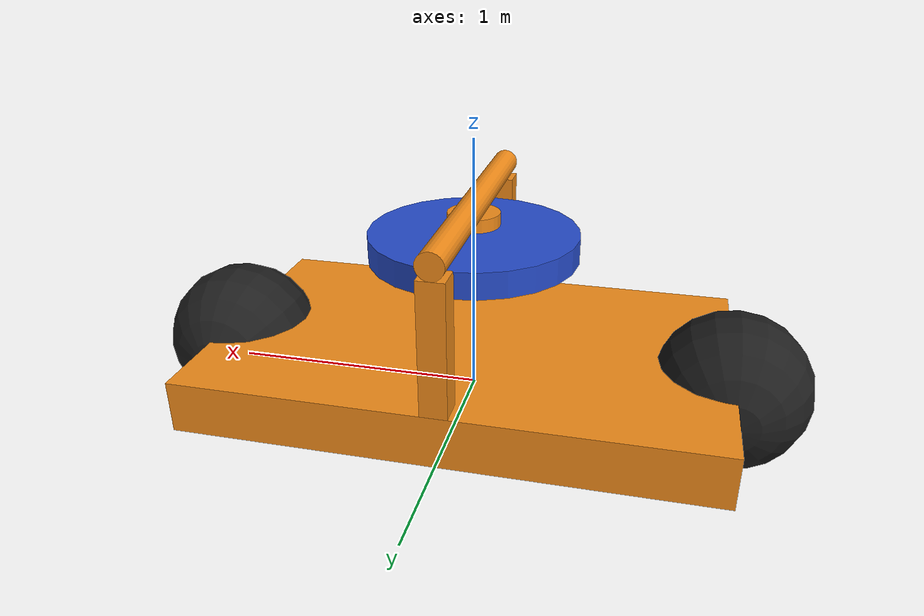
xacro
<?xml version="1.0"?>

<robot name="moto" xmlns:xacro="http://ros.org/wiki/xacro">

    <!--    Properties    -->
    <xacro:property name="namespace" value="moto"/>
    <xacro:property name="PI" value="3.1415926535897931"/>

    <!-- Properties of base -->
    <xacro:property name="height" value=".2"/>
    <xacro:property name="width" value="1.2"/>
    <xacro:property name="length" value="2"/>
    <xacro:property name="mass_base" value="10"/>

    <!-- Properties of wheels    -->
    <xacro:property name="radius" value="0.3"/>
    <xacro:property name="h" value=".05"/>
    <xacro:property name="mass_wheel" value="0.2"/>

    <!-- Properties from gyro support -->
    <xacro:property name="mass_support" value="1"/>
    <xacro:property name="h_support" value="0.5"/>
    <xacro:property name="w_support" value="0.1"/>

    <!-- Propertis of a gyroscope -->
    <xacro:property name="radius_gyro" value=".4"/>
    <xacro:property name="h_gyro" value=".1"/>
    <xacro:property name="mass_gyro" value="3"/>

    <xacro:property name="effort_support" value="200"/>
    <xacro:property name="velocity_support" value="100"/>
    <xacro:property name="effort_gyro" value="200"/>
    <xacro:property name="velocity_gyro" value="200"/>
    <xacro:property name="k_velocity_gyro" value="100"/>
    <xacro:property name="damp_gyro" value="0.1"/>
    <xacro:property name="fric_gyro" value="0.0"/>

    <!-- Include Gazebo association -->
    <xacro:include filename="$(find gyro_description)/urdf/moto.gazebo"/>
    <!-- Including Color material for Gazebo -->
    <xacro:include filename="$(find gyro_description)/urdf/materials.xacro"/>
    <!-- Component Snippets -->
    <xacro:include filename="$(find gyro_description)/urdf/component_snippets.xacro"/>

    <!-- ADIS16448 IMU. -->
    <xacro:imu_plugin_macro
            namespace="${namespace}"
            imu_suffix=""
            parent_link="base_link"
            imu_topic="imu_base"
            mass_imu_sensor="0.015"
            gyroscope_noise_density="0.0003394"
            gyroscope_random_walk="0.000038785"
            gyroscope_bias_correlation_time="1000.0"
            gyroscope_turn_on_bias_sigma="0.0087"
            accelerometer_noise_density="0.004"
            accelerometer_random_walk="0.006"
            accel_bias_correlation_time="300.0"
            accelerometer_turn_on_bias_sigma="0.1960">
        <inertia ixx="0.00001" ixy="0.0" ixz="0.0" iyy="0.00001" iyz="0.0" izz="0.00001"/>
        <origin xyz="${length/4} 0 ${height}" rpy="0 0 0"/>
    </xacro:imu_plugin_macro>

    <link name="base_link">
        <collision>
            <origin xyz="0 0 ${height/2}" rpy="0 0 0"/>
            <geometry>
                <box size="${length} ${width} ${height}"/>
            </geometry>
        </collision>
        <visual>
            <origin xyz="0 0 ${height/2}" rpy="0 0 0"/>
            <geometry>
                <box size="${length} ${width} ${height}"/>
            </geometry>
            <material name="orange"/>
        </visual>
        <inertial>
            <origin xyz="0 0 ${height/2}" rpy="0 0 0"/>
            <mass value="${mass_base}"/>
            <inertia ixx="${mass_base / 12.0 * (height*height + width*width)}" ixy="0.0" ixz="0.0"
                     iyy="${mass_base / 12.0 * (height*height + length*length)}" iyz="0.0"
                     izz="${mass_base / 12.0 * (length*length + width*width)}"/>
        </inertial>
    </link>

    <joint name="imu_joint" type="fixed">
        <origin xyz="${length/4} 0.0 ${height}" rpy="0.0 0.0 0.0"/>
        <parent link="base_link"/>
        <child link="imu_link"/>
        <axis xyz="0.0 0.0 1.0"/>
    </joint>

    <link name="imu_link">
    </link>

    <joint name="front_wheel_joint" type="continuous">
        <origin xyz="${length/2} 0.0 ${height/2}" rpy="0.0 0.0 0.0"/>
        <parent link="base_link"/>
        <child link="front_wheel_link"/>
        <axis xyz="0 1 0"/>
    </joint>

    <joint name="back_wheel_joint" type="continuous">
        <origin xyz="${-length/2} 0.0 ${height/2}" rpy="0.0 0.0 0.0"/>
        <parent link="base_link"/>
        <child link="back_wheel_link"/>
        <axis xyz="0 1 0"/>
    </joint>

    <link name="front_wheel_link">
        <visual>
            <origin xyz="0.0 0.0 0.0" rpy="${PI/2} 0.0 0.0"/>
            <geometry>
                <sphere radius="${radius}"/>
            </geometry>
        </visual>
        <collision>
            <origin xyz="0.0 0.0 0.0" rpy="${PI/2} 0.0 0.0"/>
            <geometry>
                <sphere radius="${radius}"/>
            </geometry>
        </collision>
        <inertial>
            <origin xyz="0.0 0.0 0.0" rpy="${PI/2} 0.0 0.0"/>
            <mass value="${mass_wheel}"/>
            <inertia ixx="${mass_wheel / 12.0 * (3*radius*radius + h*h)}" ixy="0.0" ixz="0.0"
                     iyy="${mass_wheel / 12.0 * (3*radius*radius + h*h)}" iyz="0.0"
                     izz="${mass_wheel / 2.0 * (radius*radius)}"/>
        </inertial>
    </link>

    <link name="back_wheel_link">
        <visual>
            <origin xyz="0.0 0.0 0.0" rpy="${PI/2} 0.0 0.0"/>
            <geometry>
                <sphere radius="${radius}"/>
            </geometry>
        </visual>
        <collision>
            <origin xyz="0.0 0.0 0.0" rpy="${PI/2} 0.0 0.0"/>
            <geometry>
                <sphere radius="${radius}"/>
            </geometry>
        </collision>
        <inertial>
            <origin xyz="0.0 0.0 0.0" rpy="${PI/2} 0.0 0.0"/>
            <mass value="${mass_wheel}"/>
            <inertia ixx="${mass_wheel / 12.0 * (3*radius*radius + h*h)}" ixy="0.0" ixz="0.0"
                     iyy="${mass_wheel / 12.0 * (3*radius*radius + h*h)}" iyz="0.0"
                     izz="${mass_wheel / 2.0 * (radius*radius)}"/>
        </inertial>
    </link>

    <joint name="support_left_joint" type="fixed">
        <origin xyz="0.0 ${(width - w_support)/2} ${height}" rpy="0.0 0.0 0.0"/>
        <parent link="base_link"/>
        <child link="support_left_link"/>
        <axis xyz="0.0 0.0 1.0"/>
    </joint>

    <link name="support_left_link">
        <visual>
            <origin xyz="0.0 0.0 ${h_support/2}" rpy="0 0 0"/>
            <geometry>
                <box size="${w_support} ${w_support} ${h_support}"/>
            </geometry>
        </visual>
        <collision>
            <origin xyz="0.0 0.0 ${h_support/2}" rpy="0 0 0"/>
            <geometry>
                <box size="${w_support} ${w_support} ${h_support}"/>
            </geometry>
        </collision>
        <inertial>
            <origin xyz="0 0 ${h_support/2}" rpy="0 0 0"/>
            <mass value="${mass_support/4}"/>
            <inertia ixx="${(mass_support/4) / 12.0 * (h_support*h_support + w_support*w_support)}" ixy="0.0" ixz="0.0"
                     iyy="${(mass_support/4) / 12.0 * (h_support*h_support + w_support*w_support)}" iyz="0.0"
                     izz="${(mass_support/4) / 12.0 * (w_support*w_support + w_support*w_support)}"/>
        </inertial>
    </link>

    <joint name="support_right_joint" type="fixed">
        <origin xyz="0.0 ${-(width - w_support)/2} ${height}" rpy="0.0 0.0 0.0"/>
        <parent link="base_link"/>
        <child link="support_right_link"/>
        <axis xyz="0.0 0.0 1.0"/>
    </joint>

    <link name="support_right_link">
        <visual>
            <origin xyz="0.0 0.0 ${h_support/2}" rpy="0 0 0"/>
            <geometry>
                <box size="${w_support} ${w_support} ${h_support}"/>
            </geometry>
        </visual>
        <collision>
            <origin xyz="0.0 0.0 ${h_support/2}" rpy="0 0 0"/>
            <geometry>
                <box size="${w_support} ${w_support} ${h_support}"/>
            </geometry>
        </collision>
        <inertial>
            <origin xyz="0 0 ${h_support/2}" rpy="0 0 0"/>
            <mass value="${mass_support/4}"/>
            <inertia ixx="${(mass_support/4) / 12.0 * (h_support*h_support + w_support*w_support)}" ixy="0.0" ixz="0.0"
                     iyy="${(mass_support/4) / 12.0 * (h_support*h_support + w_support*w_support)}" iyz="0.0"
                     izz="${(mass_support/4) / 12.0 * (w_support*w_support + w_support*w_support)}"/>
        </inertial>
    </link>

    <joint name="gyro_support_joint" type="revolute">
        <origin xyz="0.0 ${-w_support/2} ${h_support+w_support/2}" rpy="0.0 0.0 0.0"/>
        <parent link="support_right_link"/>
        <child link="axel_gyro_link"/>
        <axis xyz="0.0 1 0.0"/>
        <limit lower="-${PI/2}" upper="${PI/2}" effort="${effort_support}" velocity="${velocity_support}"/>
    </joint>

    <link name="axel_gyro_link">
        <visual>
            <origin xyz="0.0 ${width/2} 0" rpy="${PI/2} 0 0"/>
            <geometry>
                <cylinder radius="${w_support/2}" length="${width}"/>
            </geometry>
        </visual>
        <collision>
            <origin xyz="0.0 ${width/2} 0" rpy="${PI/2} 0 0"/>
            <geometry>
                <cylinder radius="${w_support/2}" length="${width}"/>
            </geometry>
        </collision>
        <inertial>
            <origin xyz="0.0 ${width/2} 0" rpy="${PI/2} 0 0"/>
            <mass value="${mass_support/4}"/>
            <inertia ixx="${(mass_support/4) / 12.0 * (3*w_support/2*w_support/2 + width*width)}" ixy="0.0" ixz="0.0"
                     iyy="${(mass_support/4) / 12.0 * (3*w_support/2*w_support/2 + width*width)}" iyz="0.0"
                     izz="${(mass_support/4) / 2.0 * (w_support/2*w_support/2)}"/>
        </inertial>
    </link>

    <!-- For each joint I wanna control -->
    <transmission name="gyro_support_joint_tran">
        <type>transmission_interface/SimpleTransmission</type>
        <joint name="gyro_support_joint">
            <hardwareInterface>hardware_interface/EffortJointInterface</hardwareInterface>
        </joint>
        <actuator name="gyro_support_joint_motor">
            <hardwareInterface>hardware_interface/EffortJointInterface</hardwareInterface>
            <mechanicalReduction>1</mechanicalReduction>
        </actuator>
    </transmission>

    <transmission name="gyro_joint_tran">
        <type>transmission_interface/SimpleTransmission</type>
        <joint name="gyro_joint">
            <hardwareInterface>hardware_interface/EffortJointInterface</hardwareInterface>
        </joint>
        <actuator name="gyro_joint_motor">
            <hardwareInterface>hardware_interface/EffortJointInterface</hardwareInterface>
            <mechanicalReduction>1</mechanicalReduction>
        </actuator>
    </transmission>

    <joint name="gyro_support_1_joint" type="fixed">
        <origin xyz="0.0 ${width/2} -${w_support/2}" rpy="0.0 0.0 0.0"/>
        <parent link="axel_gyro_link"/>
        <child link="support_gyro_link"/>
        <axis xyz="0.0 0.0 1"/>
    </joint>

    <link name="support_gyro_link">
        <visual>
            <origin xyz="0.0 0 0" rpy="0.0 0.0 0.0"/>
            <geometry>
                <cylinder radius="${radius_gyro/4}" length="0.05"/>
            </geometry>
        </visual>
        <collision>
            <origin xyz="0.0 0 0" rpy="0.0 0.0 0.0"/>
            <geometry>
                <cylinder radius="${radius_gyro/4}" length="0.05"/>
            </geometry>
        </collision>
        <inertial>
            <origin xyz="0.0 0 0" rpy="0.0 0.0 0.0"/>
            <mass value="${mass_support/4}"/>
            <inertia ixx="${(mass_support/4) / 12.0 * (3*radius_gyro/4*radius_gyro/4 + 0.05*0.05)}" ixy="0.0" ixz="0.0"
                     iyy="${(mass_support/4) / 12.0 * (3*radius_gyro/4*radius_gyro/4 + 0.05*0.05)}" iyz="0.0"
                     izz="${(mass_support/4) / 2.0 * (radius_gyro/4*radius_gyro/4)}"/>
        </inertial>
    </link>

    <joint name="gyro_joint" type="continuous">
        <origin xyz="0.0 0.0 -${h_gyro/2+0.05}" rpy="0.0 0.0 0.0"/>
        <parent link="support_gyro_link"/>
        <child link="gyro_link"/>
        <axis xyz="0.0 0.0 1"/>
        <limit effort="${effort_gyro}" velocity="${velocity_gyro}"/>
        <safety_controller k_velocity="${k_velocity_gyro}"/>
        <dynamics damping="${damp_gyro}" friction="${fric_gyro}"/>
    </joint>

    <link name="gyro_link">
        <visual>
            <origin xyz="0.0 0 0" rpy="0.0 0.0 0.0"/>
            <geometry>
                <cylinder radius="${radius_gyro}" length="${h_gyro}"/>
            </geometry>
        </visual>
        <collision>
            <origin xyz="0.0 0 0" rpy="0.0 0.0 0.0"/>
            <geometry>
                <cylinder radius="${radius_gyro}" length="${h_gyro}"/>
            </geometry>
        </collision>
        <inertial>
            <origin xyz="0.0 0 0" rpy="0.0 0.0 0.0"/>
            <mass value="${mass_gyro}"/>
            <inertia ixx="${mass_gyro / 12.0 * (3*radius_gyro*radius_gyro + h_gyro*h_gyro)}" ixy="0.0" ixz="0.0"
                     iyy="${mass_gyro / 12.0 * (3*radius_gyro*radius_gyro + h_gyro*h_gyro)}" iyz="0.0"
                     izz="${mass_gyro / 2.0 * (radius_gyro*radius_gyro)}"/>
        </inertial>
    </link>
</robot>

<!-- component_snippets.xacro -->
<robot xmlns:xacro="http://ros.org/wiki/xacro">

    <!--    Properties    -->
    <xacro:property name="PI" value="3.1415926535897931"/>

    <!-- Macro to add an IMU. -->
  <xacro:macro name="imu_plugin_macro"
    params="namespace imu_suffix parent_link imu_topic
      mass_imu_sensor gyroscope_noise_density gyroscope_random_walk
      gyroscope_bias_correlation_time gyroscope_turn_on_bias_sigma
      accelerometer_noise_density accelerometer_random_walk
      accelerometer_bias_correlation_time accelerometer_turn_on_bias_sigma
      *inertia *origin">
    <!-- IMU link -->
    <link name="${namespace}/imu${imu_suffix}_link">
      <inertial>
        <xacro:insert_block name="inertia" />
        <mass value="${mass_imu_sensor}" />  <!-- [kg] -->
        <origin xyz="0 0 0" rpy="0 0 0" />
      </inertial>
    </link>
    <!-- IMU joint -->
    <joint name="${namespace}/imu${imu_suffix}_joint" type="revolute">
      <xacro:insert_block name="origin" />
      <parent link="${parent_link}" />
      <child link="${namespace}/imu${imu_suffix}_link" />
      <limit upper="0" lower="0" effort="0" velocity="0" />
    </joint>
    <gazebo reference="imu_link">
    <gravity>true</gravity>
    <sensor name="imu_sensor" type="imu">
      <always_on>true</always_on>
      <update_rate>100</update_rate>
      <visualize>true</visualize>
      <plugin filename="libgazebo_ros_imu_sensor.so" name="imu_plugin">
        <topicName>${imu_topic}</topicName>
        <bodyName>imu_link</bodyName>
        <updateRateHZ>10.0</updateRateHZ>
        <gaussianNoise>0.0</gaussianNoise>
        <xyzOffset>0 0 0</xyzOffset>
        <rpyOffset>0 0 0</rpyOffset>
        <frameName>imu_link</frameName>
      </plugin>
      <pose>0 0 0 0 0 0</pose>
    </sensor>
  </gazebo>
    <gazebo>
    <sensor name="imu_sensor" type="imu">
        <always_on>true</always_on>
        <update_rate>100</update_rate>
        <visualize>true</visualize>
        <topic>${imu_topic}</topic>
      <plugin filename="libgazebo_ros_imu_sensor.so" name="imu_plugin">
      <!-- A good description of the IMU parameters can be found in the kalibr documentation:
           https://github.com/ethz-asl/kalibr/wiki/IMU-Noise-Model-and-Intrinsics -->
        <robotNamespace>${namespace}</robotNamespace> <!-- (string, required): ros namespace in which the messages are published -->
        <linkName>${namespace}/imu${imu_suffix}_link</linkName> <!-- (string, required): name of the body which holds the IMU sensor -->
        <imuTopic>${imu_topic}</imuTopic> <!-- (string): name of the sensor output topic and prefix of service names (defaults to imu) -->
        <gyroscopeNoiseDensity>${gyroscope_noise_density}</gyroscopeNoiseDensity> <!-- Gyroscope noise density (two-sided spectrum) [rad/s/sqrt(Hz)] -->
        <gyroscopeRandomWalk>${gyroscope_random_walk}</gyroscopeRandomWalk> <!-- Gyroscope bias random walk [rad/s/s/sqrt(Hz)] -->
        <gyroscopeBiasCorrelationTime>${gyroscope_bias_correlation_time}</gyroscopeBiasCorrelationTime> <!-- Gyroscope bias correlation time constant [s] -->
        <gyroscopeTurnOnBiasSigma>${gyroscope_turn_on_bias_sigma}</gyroscopeTurnOnBiasSigma> <!-- Gyroscope turn on bias standard deviation [rad/s] -->
        <accelerometerNoiseDensity>${accelerometer_noise_density}</accelerometerNoiseDensity> <!-- Accelerometer noise density (two-sided spectrum) [m/s^2/sqrt(Hz)] -->
        <accelerometerRandomWalk>${accelerometer_random_walk}</accelerometerRandomWalk> <!-- Accelerometer bias random walk. [m/s^2/s/sqrt(Hz)] -->
        <accelerometerBiasCorrelationTime>${accelerometer_bias_correlation_time}</accelerometerBiasCorrelationTime> <!-- Accelerometer bias correlation time constant [s] -->
        <accelerometerTurnOnBiasSigma>${accelerometer_turn_on_bias_sigma}</accelerometerTurnOnBiasSigma> <!-- Accelerometer turn on bias standard deviation [m/s^2] -->
      </plugin>
      </sensor>
    </gazebo>
  </xacro:macro>

   <!-- Macro to add a generic odometry sensor. -->
  <xacro:macro name="odometry_plugin_macro"
    params="
      namespace odometry_sensor_suffix parent_link pose_topic pose_with_covariance_topic
      position_topic transform_topic odometry_topic parent_frame_id child_frame_id
      mass_odometry_sensor measurement_divisor measurement_delay unknown_delay
      noise_normal_position noise_normal_quaternion noise_normal_linear_velocity
      noise_normal_angular_velocity noise_uniform_position
      noise_uniform_quaternion noise_uniform_linear_velocity
      noise_uniform_angular_velocity enable_odometry_map odometry_map
      image_scale *inertia *origin">
    <!-- odometry link -->
    <link name="${namespace}/odometry_sensor${odometry_sensor_suffix}_link">
      <inertial>
        <xacro:insert_block name="inertia" />
        <mass value="${mass_odometry_sensor}" />  <!-- [kg] -->
      </inertial>
    </link>
    <!-- odometry joint -->
    <joint name="${namespace}/odometry_sensor${odometry_sensor_suffix}_joint" type="revolute">
      <parent link="${parent_link}" />
      <xacro:insert_block name="origin" />
      <child link="${namespace}/odometry_sensor${odometry_sensor_suffix}_link" />
      <limit upper="0" lower="0" effort="0" velocity="0" />
    </joint>
    <gazebo>
      <plugin filename="librotors_gazebo_odometry_plugin.so" name="odometry_sensor${odometry_sensor_suffix}">
        <linkName>${namespace}/odometry_sensor${odometry_sensor_suffix}_link</linkName>
        <robotNamespace>${namespace}</robotNamespace>
        <poseTopic>${pose_topic}</poseTopic>
        <poseWithCovarianceTopic>${pose_with_covariance_topic}</poseWithCovarianceTopic>
        <positionTopic>${position_topic}</positionTopic>
        <transformTopic>${transform_topic}</transformTopic>
        <odometryTopic>${odometry_topic}</odometryTopic>
        <parentFrameId>${parent_frame_id}</parentFrameId> <!-- Use the scoped link name here. e.g. Model::link. -->
        <childFrameId>${child_frame_id}</childFrameId>
        <measurementDivisor>${measurement_divisor}</measurementDivisor> <!-- only every (seq % measurementDivisor) == 0 measurement is published [int] -->
        <measurementDelay>${measurement_delay}</measurementDelay> <!-- time that measurement gets held back before it's published in [simulation cycles (int)] -->
        <unknownDelay>${unknown_delay}</unknownDelay> <!-- additional delay, that just gets added to the timestamp [s] -->
        <noiseNormalPosition>${noise_normal_position}</noiseNormalPosition> <!-- standard deviation of additive white gaussian noise [m] -->
        <noiseNormalQuaternion>${noise_normal_quaternion}</noiseNormalQuaternion> <!-- standard deviation white gaussian noise [rad]: q_m = q*quaternionFromSmallAngleApproximation(noiseNormalQ) -->
        <noiseNormalLinearVelocity>${noise_normal_linear_velocity}</noiseNormalLinearVelocity> <!-- standard deviation of additive white gaussian noise [m/s] -->
        <noiseNormalAngularVelocity>${noise_normal_angular_velocity}</noiseNormalAngularVelocity> <!-- standard deviation of additive white gaussian noise [rad/s] -->
        <noiseUniformPosition>${noise_uniform_position}</noiseUniformPosition> <!-- symmetric bounds of uniform noise [m] -->
        <noiseUniformQuaternion>${noise_uniform_quaternion}</noiseUniformQuaternion> <!-- symmetric bounds of uniform noise [rad], computation see above -->
        <noiseUniformLinearVelocity>${noise_uniform_linear_velocity}</noiseUniformLinearVelocity> <!-- symmetric bounds of uniform noise [m/s] -->
        <noiseUniformAngularVelocity>${noise_uniform_angular_velocity}</noiseUniformAngularVelocity> <!-- symmetric bounds of uniform noise [rad/s] -->
        <xacro:if value="${enable_odometry_map}">
          <covarianceImage>package://vant3d_gazebo/resource/${odometry_map}</covarianceImage> <!-- a bitmap image describing where the sensor works (white), and where not (black) -->
          <covarianceImageScale>${image_scale}</covarianceImageScale> <!-- the scale of the image in the gazebo world, if set to 1.0, 1 pixel in the image corresponds to 1 meter in the world -->
        </xacro:if>
      </plugin>
    </gazebo>
  </xacro:macro>

  <!-- Macro to add a GPS sensor. -->
  <xacro:macro name="gps_plugin_macro"
    params="namespace gps_suffix parent_link gps_topic ground_speed_topic
      mass_gps_sensor horizontal_pos_std_dev vertical_pos_std_dev
      horizontal_vel_std_dev vertical_vel_std_dev *inertia *origin">
    <!-- GPS link -->
    <link name="${namespace}/gps${gps_suffix}_link">
      <inertial>
        <xacro:insert_block name="inertia" />
        <mass value="${mass_gps_sensor}" />  <!-- [kg] -->
        <origin xyz="0 0 0" rpy="0 0 0" />
      </inertial>
    </link>
    <!-- GPS joint -->
    <joint name="${namespace}/gps${gps_suffix}_joint" type="revolute">
      <xacro:insert_block name="origin" />
      <parent link="${parent_link}" />
      <child link="${namespace}/gps${gps_suffix}_link" />
      <limit upper="0" lower="0" effort="0" velocity="0" />
    </joint>
    <gazebo reference="${namespace}/gps${gps_suffix}_link">
      <sensor type="gps" name="${namespace}_gps${gps_suffix}">
        <pose>0 0 0 0 0 0</pose>
        <visualize>0</visualize>
        <always_on>1</always_on>
        <update_rate>5</update_rate>
        <gps>
          <position_sensing>
            <horizontal>
              <noise type="gaussian">
                <mean>0.0</mean>
                <stddev>${horizontal_pos_std_dev}</stddev>
                <bias_mean>0.0</bias_mean>
                <bias_stddev>0.0</bias_stddev>
              </noise>
            </horizontal>
            <vertical>
              <noise type="gaussian">
                <mean>0.0</mean>
                <stddev>${vertical_pos_std_dev}</stddev>
                <bias_mean>0.0</bias_mean>
                <bias_stddev>0.0</bias_stddev>
              </noise>
            </vertical>
          </position_sensing>
          <velocity_sensing>
            <horizontal>
              <noise type="gaussian">
                <mean>0.0</mean>
                <stddev>${horizontal_vel_std_dev}</stddev>
                <bias_mean>0.0</bias_mean>
                <bias_stddev>0.0</bias_stddev>
              </noise>
            </horizontal>
            <vertical>
              <noise type="gaussian">
                <mean>0.0</mean>
                <stddev>${vertical_vel_std_dev}</stddev>
                <bias_mean>0.0</bias_mean>
                <bias_stddev>0.0</bias_stddev>
              </noise>
            </vertical>
          </velocity_sensing>
        </gps>
        <plugin filename="librotors_gazebo_gps_plugin.so" name="rotors_gazebo_gps${gps_suffix}_plugin">
          <robotNamespace>${namespace}</robotNamespace> <!-- (string, required): ros namespace in which the messages are published -->
          <linkName>${namespace}/gps${gps_suffix}_link</linkName> <!-- (string, required): name of the body which holds the GPS sensor -->
          <gpsTopic>${gps_topic}</gpsTopic> <!-- (string): name of the sensor output topic and prefix of service names (defaults to 'gps') -->
          <groundSpeedTopic>${ground_speed_topic}</groundSpeedTopic> <!-- (string): name of the ground speed output topic (defaults to 'ground_speed') -->
          <horPosStdDev>${horizontal_pos_std_dev}</horPosStdDev> <!-- standard deviation for horizontal position noise [m] -->
          <verPosStdDev>${vertical_pos_std_dev}</verPosStdDev> <!-- standard deviation for vertical position noise [m] -->
          <horVelStdDev>${horizontal_vel_std_dev}</horVelStdDev> <!-- standard deviation for horizontal speed noise [m/s] -->
          <verVelStdDev>${vertical_vel_std_dev}</verVelStdDev> <!-- standard deviation for vertical speed noise [m/s] -->
        </plugin>
      </sensor>
    </gazebo>
  </xacro:macro>

  <!-- Macro to add a magnetometer. -->
  <xacro:macro name="magnetometer_plugin_macro"
    params="namespace magnetometer_suffix parent_link magnetometer_topic
      mass_magnetometer_sensor ref_mag_north ref_mag_east ref_mag_down
      noise_normal noise_uniform_initial_bias *inertia *origin">
    <!-- Magnetometer link -->
    <link name="${namespace}/magnetometer${magnetometer_suffix}_link">
      <inertial>
        <xacro:insert_block name="inertia" />
        <mass value="${mass_magnetometer_sensor}" />  <!-- [kg] -->
        <origin xyz="0 0 0" rpy="0 0 0" />
      </inertial>
    </link>
    <!-- Magnetometer joint -->
    <joint name="${namespace}/magnetometer${magnetometer_suffix}_joint" type="revolute">
      <xacro:insert_block name="origin" />
      <parent link="${parent_link}" />
      <child link="${namespace}/magnetometer${magnetometer_suffix}_link" />
      <limit upper="0" lower="0" effort="0" velocity="0" />
    </joint>
    <gazebo>
      <plugin filename="librotors_gazebo_magnetometer_plugin.so" name="rotors_gazebo_magnetometer${magnetometer_suffix}_plugin">
        <robotNamespace>${namespace}</robotNamespace> <!-- (string, required): ros namespace in which the messages are published -->
        <linkName>${namespace}/magnetometer${magnetometer_suffix}_link</linkName> <!-- (string, required): name of the body which holds the magnetometer -->
        <magnetometerTopic>${magnetometer_topic}</magnetometerTopic> <!-- (string): name of the sensor output topic and prefix of service names (defaults to 'magnetic_field') -->
        <refMagNorth>${ref_mag_north}</refMagNorth>
        <refMagEast>${ref_mag_east}</refMagEast>
        <refMagDown>${ref_mag_down}</refMagDown>
        <noiseNormal>${noise_normal}</noiseNormal> <!-- standard deviation of additive white gaussian noise [Tesla] -->
        <noiseUniformInitialBias>${noise_uniform_initial_bias}</noiseUniformInitialBias> <!-- symmetric bounds of uniform noise for initial sensor bias [Tesla] -->
      </plugin>
    </gazebo>
  </xacro:macro>

  <!-- Macro to add an air pressure sensor. -->
  <xacro:macro name="pressure_sensor_plugin_macro"
    params="namespace pressure_sensor_suffix parent_link pressure_topic
      mass_pressure_sensor reference_altitude pressure_variance *inertia
      *origin">
    <!-- Pressure sensor link -->
    <link name="${namespace}/pressure_sensor${pressure_sensor_suffix}_link">
      <inertial>
        <xacro:insert_block name="inertia" />
        <mass value="${mass_pressure_sensor}" />  <!-- [kg] -->
        <origin xyz="0 0 0" rpy="0 0 0" />
      </inertial>
    </link>
    <!-- Pressure sensor joint -->
    <joint name="${namespace}/pressure_sensor${pressure_sensor_suffix}_joint" type="revolute">
      <xacro:insert_block name="origin" />
      <parent link="${parent_link}" />
      <child link="${namespace}/pressure_sensor${pressure_sensor_suffix}_link" />
      <limit upper="0" lower="0" effort="0" velocity="0" />
    </joint>
    <gazebo>
      <plugin filename="librotors_gazebo_pressure_plugin.so" name="rotors_gazebo_pressure_sensor${pressure_sensor_suffix}_plugin">
        <robotNamespace>${namespace}</robotNamespace> <!-- (string, required): ros namespace in which the messages are published -->
        <linkName>${namespace}/pressure_sensor${pressure_sensor_suffix}_link</linkName> <!-- (string, required): name of the body which holds the pressure sensor -->
        <pressureTopic>${pressure_topic}</pressureTopic> <!-- (string): name of the sensor output topic and prefix of service names (defaults to 'air_pressure') -->
        <referenceAltitude>${reference_altitude}</referenceAltitude> <!-- the initial altitude [m] -->
        <pressureVariance>${pressure_variance}</pressureVariance> <!-- the air pressure variance [Pa^2] -->
      </plugin>
    </gazebo>
  </xacro:macro>

</robot>
